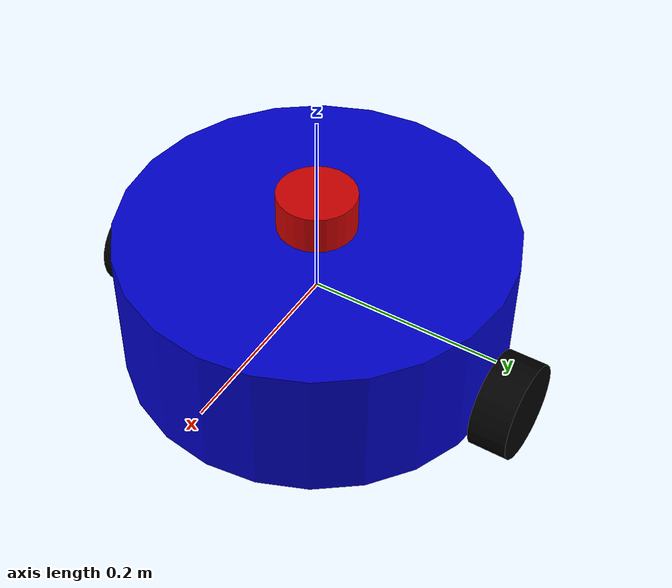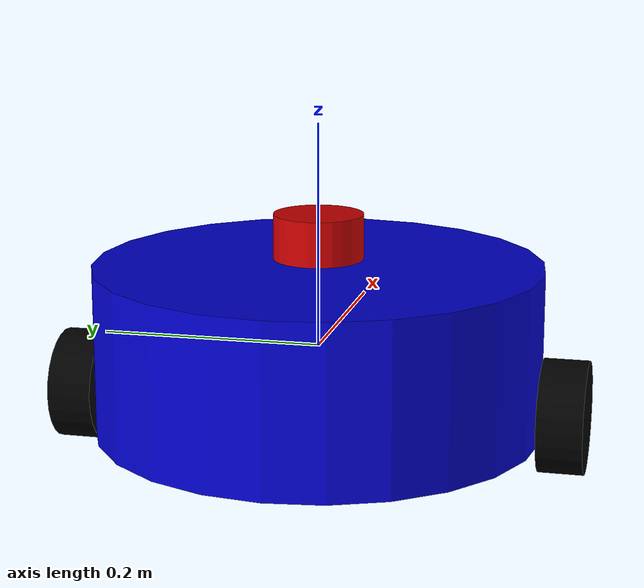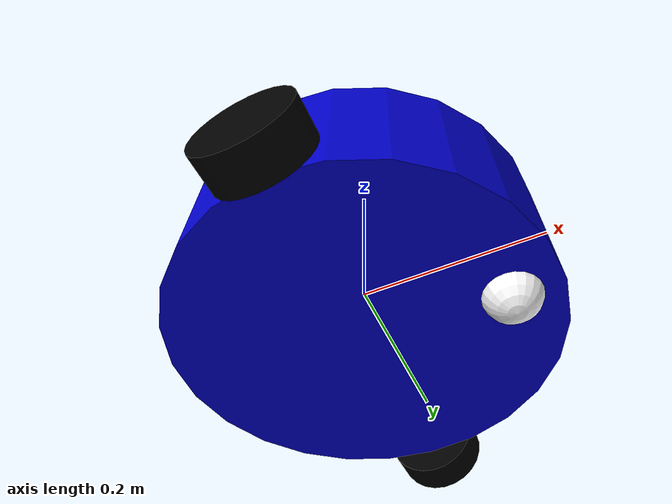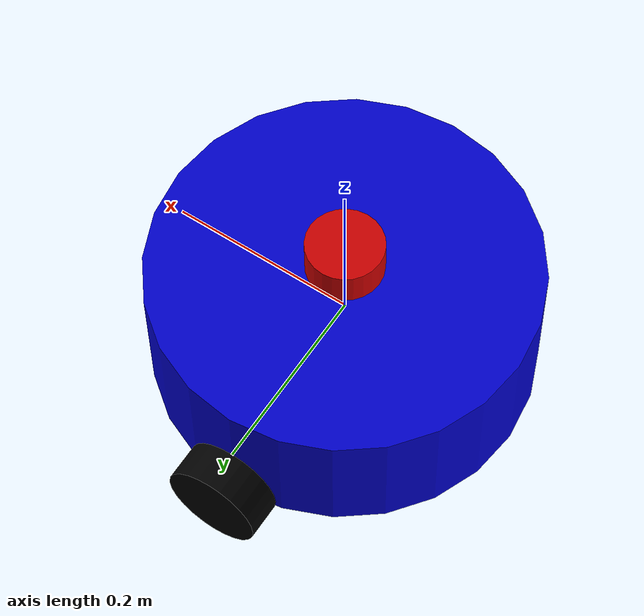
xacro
<?xml version="1.0"?>
<robot name="amr_robot" xmlns:xacro="http://www.ros.org/wiki/xacro">

  <!-- Base Link -->
  <link name="base_link">
    <visual>
      <geometry>
        <cylinder length="0.15" radius="0.2"/>
      </geometry>
      <material name="blue">
        <color rgba="0.0 0.0 0.8 1.0"/>
      </material>
    </visual>
    <collision>
      <geometry>
        <cylinder length="0.15" radius="0.2"/>
      </geometry>
    </collision>
    <inertial>
      <mass value="5.0"/>
      <origin xyz="0 0 0" rpy="0 0 0"/>
      <inertia ixx="0.05" ixy="0.0" ixz="0.0" iyy="0.05" iyz="0.0" izz="0.1"/>
    </inertial>
  </link>

  <!-- Left Wheel -->
  <link name="left_wheel">
    <visual>
      <geometry>
        <cylinder length="0.04" radius="0.05"/>
      </geometry>
      <material name="black">
        <color rgba="0.0 0.0 0.0 1.0"/>
      </material>
    </visual>
    <collision>
      <geometry>
        <cylinder length="0.04" radius="0.05"/>
      </geometry>
    </collision>
    <inertial>
      <mass value="0.5"/>
      <origin xyz="0 0 0" rpy="0 0 0"/>
      <inertia ixx="0.001" ixy="0.0" ixz="0.0" iyy="0.001" iyz="0.0" izz="0.001"/>
    </inertial>
  </link>

  <joint name="left_wheel_joint" type="continuous">
    <parent link="base_link"/>
    <child link="left_wheel"/>
    <origin xyz="0 0.22 -0.05" rpy="-1.5708 0 0"/>
    <axis xyz="0 0 1"/>
  </joint>

  <!-- Right Wheel -->
  <link name="right_wheel">
    <visual>
      <geometry>
        <cylinder length="0.04" radius="0.05"/>
      </geometry>
      <material name="black">
        <color rgba="0.0 0.0 0.0 1.0"/>
      </material>
    </visual>
    <collision>
      <geometry>
        <cylinder length="0.04" radius="0.05"/>
      </geometry>
    </collision>
    <inertial>
      <mass value="0.5"/>
      <origin xyz="0 0 0" rpy="0 0 0"/>
      <inertia ixx="0.001" ixy="0.0" ixz="0.0" iyy="0.001" iyz="0.0" izz="0.001"/>
    </inertial>
  </link>

  <joint name="right_wheel_joint" type="continuous">
    <parent link="base_link"/>
    <child link="right_wheel"/>
    <origin xyz="0 -0.22 -0.05" rpy="-1.5708 0 0"/>
    <axis xyz="0 0 1"/>
  </joint>

  <!-- Caster Wheel -->
  <link name="caster_wheel">
    <visual>
      <geometry>
        <sphere radius="0.03"/>
      </geometry>
      <material name="white">
        <color rgba="1.0 1.0 1.0 1.0"/>
      </material>
    </visual>
    <collision>
      <geometry>
        <sphere radius="0.03"/>
      </geometry>
    </collision>
    <inertial>
      <mass value="0.2"/>
      <origin xyz="0 0 0" rpy="0 0 0"/>
      <inertia ixx="0.0001" ixy="0.0" ixz="0.0" iyy="0.0001" iyz="0.0" izz="0.0001"/>
    </inertial>
  </link>

  <joint name="caster_joint" type="fixed">
    <parent link="base_link"/>
    <child link="caster_wheel"/>
    <origin xyz="0.15 0 -0.07" rpy="0 0 0"/>
  </joint>

  <!-- LiDAR Sensor Link -->
  <link name="laser_frame">
    <visual>
      <geometry>
        <cylinder length="0.04" radius="0.04"/>
      </geometry>
      <material name="red">
        <color rgba="0.8 0.0 0.0 1.0"/>
      </material>
    </visual>
  </link>

  <joint name="laser_joint" type="fixed">
    <parent link="base_link"/>
    <child link="laser_frame"/>
    <origin xyz="0 0 0.1" rpy="0 0 0"/>
  </joint>

  <!-- IMU Sensor Link -->
  <link name="imu_link"/>

  <joint name="imu_joint" type="fixed">
    <parent link="base_link"/>
    <child link="imu_link"/>
    <origin xyz="0 0 0" rpy="0 0 0"/>
  </joint>

</robot>
